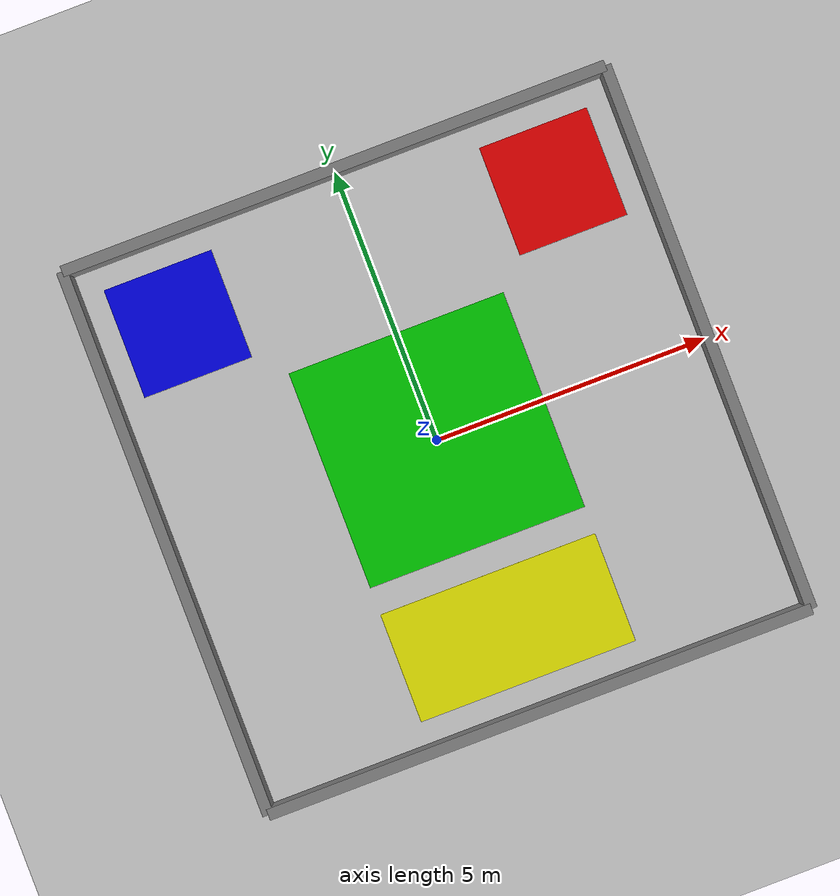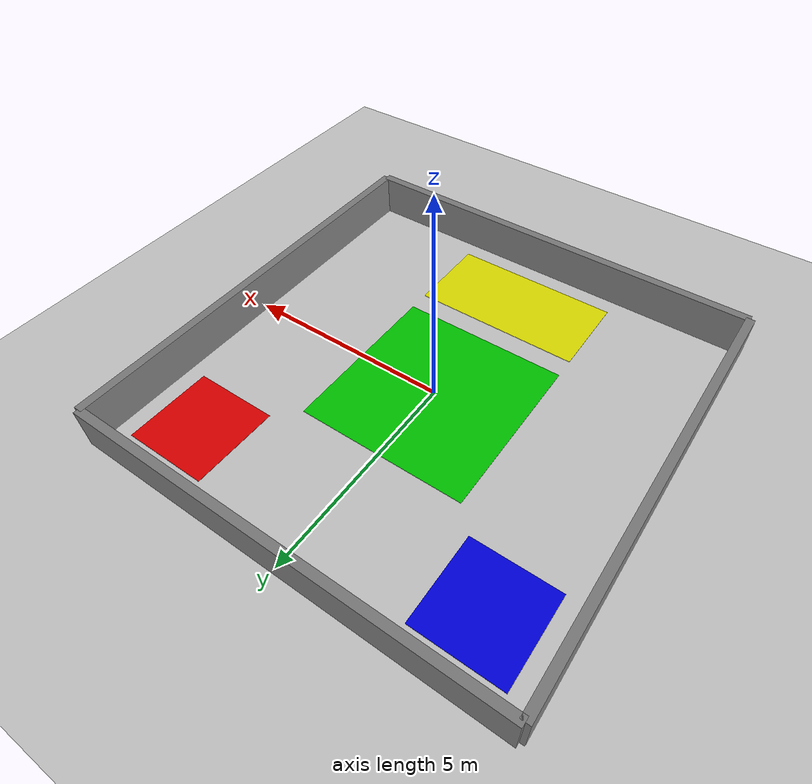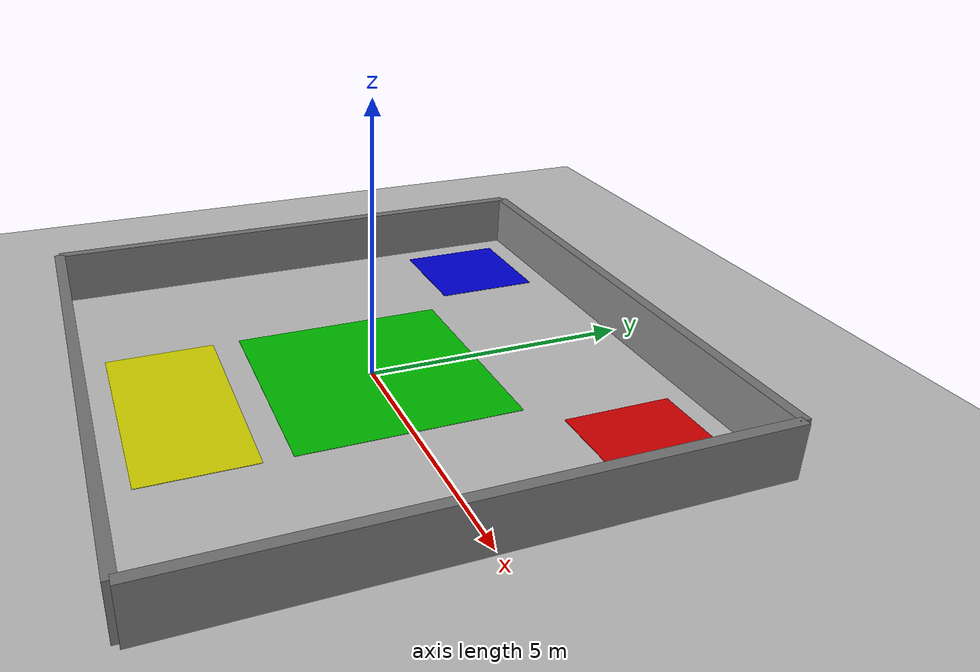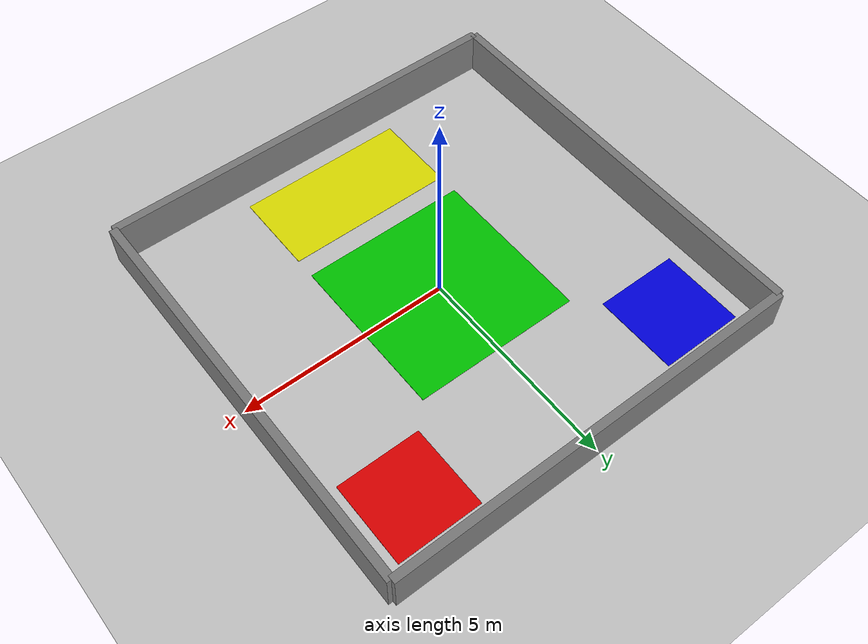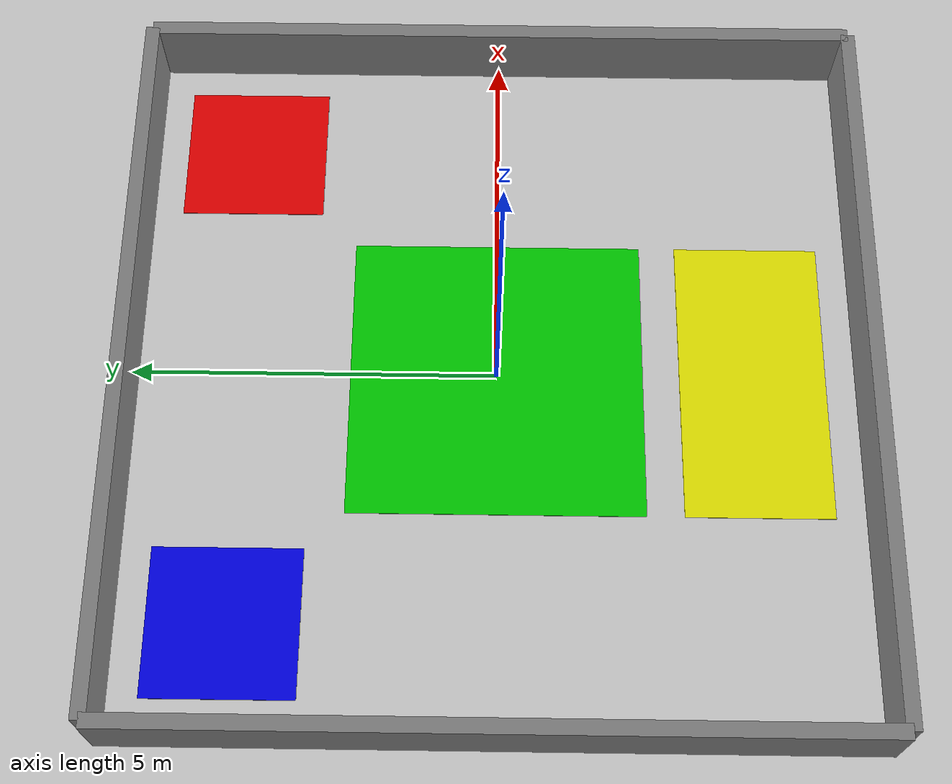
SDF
<?xml version="1.0"?>
<sdf version="1.8">
  <world name="default">
    <physics type="ode">
      <real_time_update_rate>1000.0</real_time_update_rate>
      <max_step_size>0.001</max_step_size>
      <real_time_factor>1</real_time_factor>
      <ode>
        <solver>
          <type>quick</type>
          <iters>150</iters>
          <precon_iters>0</precon_iters>
          <sor>1.4</sor>
          <use_dynamic_moi_rescaling>1</use_dynamic_moi_rescaling>
        </solver>
        <constraints>
          <cfm>0.00001</cfm>
          <erp>0.2</erp>
          <contact_max_correcting_vel>2000.0</contact_max_correcting_vel>
          <contact_surface_layer>0.01</contact_surface_layer>
        </constraints>
      </ode>
    </physics>
    <plugin filename="gz-sim-physics-system" name="gz::sim::systems::Physics"/>
    <plugin filename="gz-sim-user-commands-system" name="gz::sim::systems::UserCommands"/>
    <plugin filename="gz-sim-scene-broadcaster-system" name="gz::sim::systems::SceneBroadcaster"/>
    <plugin filename="gz-sim-sensors-system" name="gz::sim::systems::Sensors">
      <render_engine>ogre2</render_engine>
    </plugin>
    <plugin filename="gz-sim-imu-system" name="gz::sim::systems::Imu"/>

    <include>
      <uri>https://fuel.gazebosim.org/1.0/OpenRobotics/models/Ground Plane</uri>
    </include>
    <include>
      <uri>https://fuel.gazebosim.org/1.0/OpenRobotics/models/Sun</uri>
    </include>

    <!-- Walls -->
    <model name="wall_north">
      <static>true</static>
      <pose>0 5 0.5 0 0 0</pose>
      <link name="link">
        <collision name="collision"><geometry><box><size>10 0.2 1.0</size></box></geometry></collision>
        <visual name="visual">
          <geometry><box><size>10 0.2 1.0</size></box></geometry>
          <material><ambient>0.5 0.5 0.5 1</ambient><diffuse>0.5 0.5 0.5 1</diffuse></material>
        </visual>
      </link>
    </model>

    <model name="wall_south">
      <static>true</static>
      <pose>0 -5 0.5 0 0 0</pose>
      <link name="link">
        <collision name="collision"><geometry><box><size>10 0.2 1.0</size></box></geometry></collision>
        <visual name="visual">
          <geometry><box><size>10 0.2 1.0</size></box></geometry>
          <material><ambient>0.5 0.5 0.5 1</ambient><diffuse>0.5 0.5 0.5 1</diffuse></material>
        </visual>
      </link>
    </model>

    <model name="wall_east">
      <static>true</static>
      <pose>5 0 0.5 0 0 0</pose>
      <link name="link">
        <collision name="collision"><geometry><box><size>0.2 10 1.0</size></box></geometry></collision>
        <visual name="visual">
          <geometry><box><size>0.2 10 1.0</size></box></geometry>
          <material><ambient>0.5 0.5 0.5 1</ambient><diffuse>0.5 0.5 0.5 1</diffuse></material>
        </visual>
      </link>
    </model>

    <model name="wall_west">
      <static>true</static>
      <pose>-5 0 0.5 0 0 0</pose>
      <link name="link">
        <collision name="collision"><geometry><box><size>0.2 10 1.0</size></box></geometry></collision>
        <visual name="visual">
          <geometry><box><size>0.2 10 1.0</size></box></geometry>
          <material><ambient>0.5 0.5 0.5 1</ambient><diffuse>0.5 0.5 0.5 1</diffuse></material>
        </visual>
      </link>
    </model>

    <!-- GREEN ZONE - center -->
    <model name="zone_green">
      <static>true</static>
      <pose>0 0 0.005 0 0 0</pose>
      <link name="link">
        <visual name="visual">
          <geometry><box><size>4 4 0.01</size></box></geometry>
          <material><ambient>0.0 0.8 0.0 1</ambient><diffuse>0.0 0.8 0.0 1</diffuse></material>
        </visual>
      </link>
    </model>

    <!-- YELLOW ZONE - south entrance -->
    <model name="zone_yellow">
      <static>true</static>
      <pose>0 -3.5 0.005 0 0 0</pose>
      <link name="link">
        <visual name="visual">
          <geometry><box><size>4 2 0.01</size></box></geometry>
          <material><ambient>0.9 0.9 0.0 1</ambient><diffuse>0.9 0.9 0.0 1</diffuse></material>
        </visual>
      </link>
    </model>

    <!-- RED ZONE - northeast corner -->
    <model name="zone_red">
      <static>true</static>
      <pose>3.5 3.5 0.005 0 0 0</pose>
      <link name="link">
        <visual name="visual">
          <geometry><box><size>2 2 0.01</size></box></geometry>
          <material><ambient>0.9 0.0 0.0 1</ambient><diffuse>0.9 0.0 0.0 1</diffuse></material>
        </visual>
      </link>
    </model>

    <!-- BLUE ZONE - northwest corner -->
    <model name="zone_blue">
      <static>true</static>
      <pose>-3.5 3.5 0.005 0 0 0</pose>
      <link name="link">
        <visual name="visual">
          <geometry><box><size>2 2 0.01</size></box></geometry>
          <material><ambient>0.0 0.0 0.9 1</ambient><diffuse>0.0 0.0 0.9 1</diffuse></material>
        </visual>
      </link>
    </model>

  </world>
</sdf>
